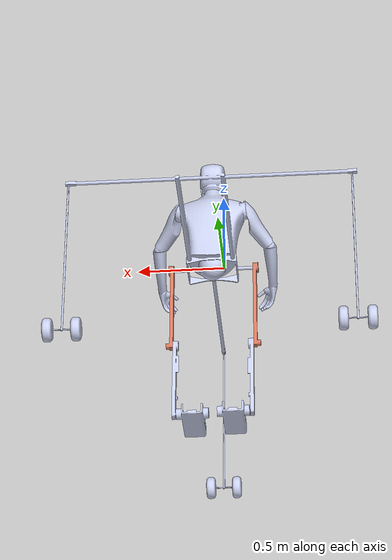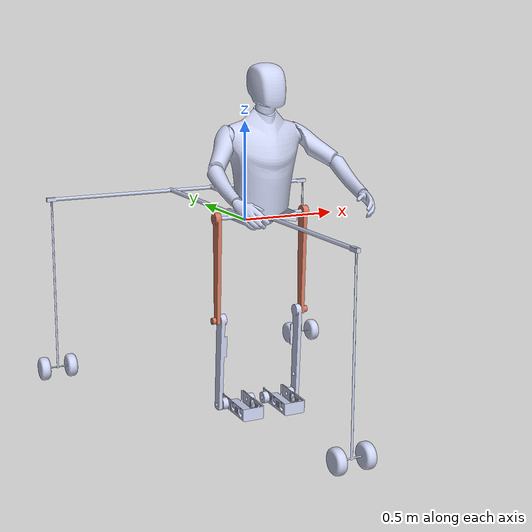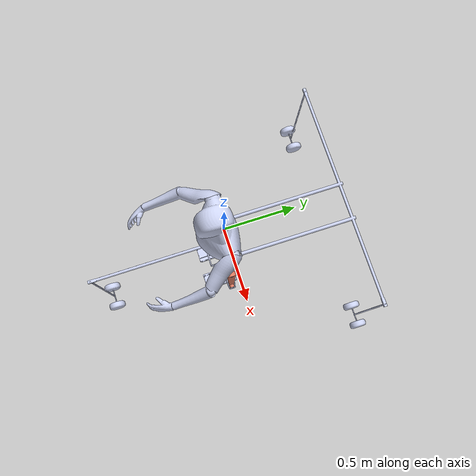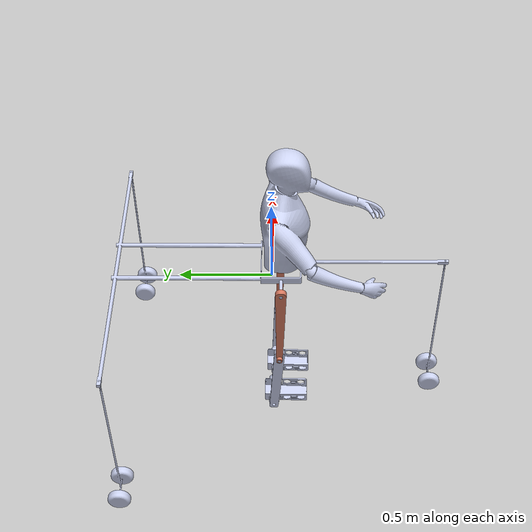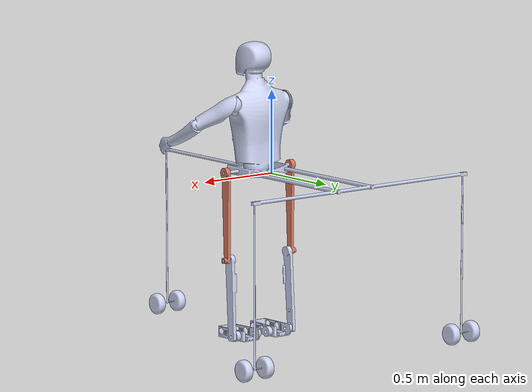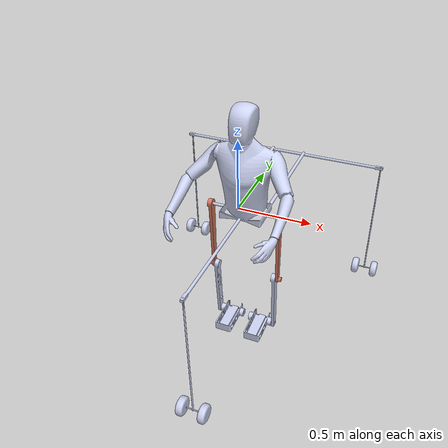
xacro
<?xml version="1.0"?>
<robot
  name="exo_vone" xmlns:xacro="http://ros.org/wiki/xacro">

#Added Visuals
  <xacro:macro name="body_color">
    <visual>
    <material>
        <ambient>255 204 203 1</ambient>
        <diffuse>255 204 203 1</diffuse>
        <specular>0.1 0.1 0.1 1</specular>
        <emissive>0 0 0 0</emissive>
    </material>
    </visual>
  </xacro:macro>

  <xacro:macro name="leg_color">
    <visual>
    <material>
        <ambient>255 152 0 1</ambient>
        <diffuse>255 152 0 1</diffuse>
        <specular>0.1 0.1 0.1 1</specular>
        <emissive>0 0 0 0</emissive>
    </material>
    </visual>
  </xacro:macro>

  <xacro:macro name="wheel_color">
    <visual>
    <material>
        <ambient>60 60 60 1</ambient>
        <diffuse>60 60 60 1</diffuse>
        <specular>0.1 0.1 0.1 1</specular>
        <emissive>0 0 0 0</emissive>
    </material>
    </visual>
  </xacro:macro>

  <xacro:macro name="shoe_color">
    <visual>
    <material>
        <ambient>135 206 235 1</ambient>
        <diffuse>135 206 235 1</diffuse>
        <specular>0.1 0.1 0.1 1</specular>
        <emissive>0 0 0 0</emissive>
    </material>
    </visual>
  </xacro:macro>

  # Add this before base link
  <link name="dummy_link"></link>
  <link
    name="body">
    <inertial>
      <origin
        xyz="0.0721703450880188 -0.0711850762110267 0.325437570168997"
        rpy="0 0 0" />
      <mass
        value="40.0322700838983" />
      <inertia
        ixx="1.12242433869777"
        ixy="0.0135694513781301"
        ixz="-8.52864632798917E-05"
        iyy="0.8604760758101"
        iyz="-0.0229895386625281"
        izz="0.86890767646624" />
    </inertial>
    <visual>
      <origin
        xyz="0 0 0"
        rpy="0 0 0" />
      <geometry>
        <mesh
          filename="package://exo_vone/meshes/body.STL" />
      </geometry>
      <material
        name="">
        <color
          rgba="0.792156862745098 0.819607843137255 0.933333333333333 1" />
      </material>
    </visual>
    <collision>
      <origin
        xyz="0 0 0"
        rpy="0 0 0" />
      <geometry>
        <mesh
          filename="package://exo_vone/meshes/body.STL" />
      </geometry>
    </collision>
  </link>
# Add this after base link
  <joint name="dummy_joint" type="fixed">
      <origin rpy="0 0 0" xyz="0 0 0" />
      <parent link="dummy_link"/>
      <child link="body"/>
  </joint>

  <link
    name="leftthigh">
    <inertial>
      <origin
        xyz="-0.00536778004792505 -0.227132301681399 0.0110924986446574"
        rpy="0 0 0" />
      <mass
        value="0.563007071942983" />
      <inertia
        ixx="0.0108814890246219"
        ixy="-0.000253684328401118"
        ixz="1.54879514035375E-06"
        iyy="0.000147965154666073"
        iyz="6.18911123078994E-05"
        izz="0.0109763459714468" />
    </inertial>
    <visual>
      <origin
        xyz="0 0 0"
        rpy="0 0 0" />
      <geometry>
        <mesh
          filename="package://exo_vone/meshes/leftthigh.STL" />
      </geometry>
      <material
        name="">
        <color
          rgba="0.83921568627451 0.470588235294118 0.368627450980392 1" />
      </material>
    </visual>
    <collision>
      <origin
        xyz="0 0 0"
        rpy="0 0 0" />
      <geometry>
        <mesh
          filename="package://exo_vone/meshes/leftthigh.STL" />
      </geometry>
    </collision>
  </link>
  <joint
    name="leftthighjoint"
    type="revolute">
    <origin
      xyz="0.29555 -0.049096 0.03"
      rpy="1.5708 -0.03881 1.5708" />
    <parent
      link="body" />
    <child
      link="leftthigh" />
    <axis
      xyz="0 0 -1" />
    <limit
      lower="-0.7"
      upper="0.7"
      effort="0"
      velocity="0" />
  </joint>
  <link
    name="leftknee">
    <inertial>
      <origin
        xyz="-0.2050564118263 -0.00956594644923981 -0.0103304354854488"
        rpy="0 0 0" />
      <mass
        value="0.6069234730997" />
      <inertia
        ixx="0.000220783749580585"
        ixy="-0.000606622090299375"
        ixz="9.7203980224204E-06"
        iyy="0.013711480308962"
        iyz="-1.98267817084477E-06"
        izz="0.0138505508080809" />
    </inertial>
    <visual>
      <origin
        xyz="0 0 0"
        rpy="0 0 0" />
      <geometry>
        <mesh
          filename="package://exo_vone/meshes/leftknee.STL" />
      </geometry>
      <material
        name="">
        <color
          rgba="0.792156862745098 0.819607843137255 0.933333333333333 1" />
      </material>
    </visual>
    <collision>
      <origin
        xyz="0 0 0"
        rpy="0 0 0" />
      <geometry>
        <mesh
          filename="package://exo_vone/meshes/leftknee.STL" />
      </geometry>
    </collision>
  </link>
  <joint
    name="leftkneejoint"
    type="revolute">
    <origin
      xyz="-0.012703 -0.5222 0"
      rpy="0 0 1.532" />
    <parent
      link="leftthigh" />
    <child
      link="leftknee" />
    <axis
      xyz="0 0 1" />
    <limit
      lower="-0.7"
      upper="0.7"
      effort="0"
      velocity="0" />
  </joint>
  <link
    name="leftshoe">
    <inertial>
      <origin
        xyz="-0.0126541929702663 0.0572351863043321 -0.0889168953577859"
        rpy="0 0 0" />
      <mass
        value="0.621318515868409" />
      <inertia
        ixx="0.00460577107937433"
        ixy="0.000181415694080681"
        ixz="-8.03394290424055E-07"
        iyy="0.00159077626935315"
        iyz="1.50811120899723E-05"
        izz="0.00340229565651185" />
    </inertial>
    <visual>
      <origin
        xyz="0 0 0"
        rpy="0 0 0" />
      <geometry>
        <mesh
          filename="package://exo_vone/meshes/leftshoe.STL" />
      </geometry>
      <material
        name="">
        <color
          rgba="0.792156862745098 0.819607843137255 0.933333333333333 1" />
      </material>
    </visual>
    <collision>
      <origin
        xyz="0 0 0"
        rpy="0 0 0" />
      <geometry>
        <mesh
          filename="package://exo_vone/meshes/leftshoe.STL" />
      </geometry>
    </collision>
  </link>
  <joint
    name="leftshoejoint"
    type="revolute">
    <origin
      xyz="-0.46002 -0.021094 -0.024609"
      rpy="0 0 0" />
    <parent
      link="leftknee" />
    <child
      link="leftshoe" />
    <axis
      xyz="0 0 1" />
    <limit
      lower="-0.7"
      upper="0.7"
      effort="0"
      velocity="0" />
  </joint>
  <link
    name="rightthigh">
    <inertial>
      <origin
        xyz="0.00323520741228955 0.227172685335919 0.0110924986446574"
        rpy="0 0 0" />
      <mass
        value="0.563007071942982" />
      <inertia
        ixx="0.010885306021714"
        ixy="-0.000152876877290307"
        ixz="-9.67688209881082E-07"
        iyy="0.000144148157573983"
        iyz="-6.19029250409402E-05"
        izz="0.0109763459714468" />
    </inertial>
    <visual>
      <origin
        xyz="0 0 0"
        rpy="0 0 0" />
      <geometry>
        <mesh
          filename="package://exo_vone/meshes/rightthigh.STL" />
      </geometry>
      <material
        name="">
        <color
          rgba="0.83921568627451 0.470588235294118 0.368627450980392 1" />
      </material>
    </visual>
    <collision>
      <origin
        xyz="0 0 0"
        rpy="0 0 0" />
      <geometry>
        <mesh
          filename="package://exo_vone/meshes/rightthigh.STL" />
      </geometry>
    </collision>
  </link>
  <joint
    name="rightthighjoint"
    type="revolute">
    <origin
      xyz="-0.16345 -0.049096 0.03"
      rpy="-1.5708 0 1.5708" />
    <parent
      link="body" />
    <child
      link="rightthigh" />
    <axis
      xyz="0 0 -1" />
    <limit
      lower="-0.7"
      upper="0.7"
      effort="0"
      velocity="0" />
  </joint>
  <link
    name="rightknee">
    <inertial>
      <origin
        xyz="-0.205160365094109 0.00699027587207472 -0.0103304354854488"
        rpy="0 0 0" />
      <mass
        value="0.6069234730997" />
      <inertia
        ixx="0.000210943270211191"
        ixy="0.000484910924019683"
        ixz="9.52900202741494E-06"
        iyy="0.0137213207883314"
        iyz="-2.75957801211138E-06"
        izz="0.0138505508080809" />
    </inertial>
    <visual>
      <origin
        xyz="0 0 0"
        rpy="0 0 0" />
      <geometry>
        <mesh
          filename="package://exo_vone/meshes/rightknee.STL" />
      </geometry>
      <material
        name="">
        <color
          rgba="0.792156862745098 0.819607843137255 0.933333333333333 1" />
      </material>
    </visual>
    <collision>
      <origin
        xyz="0 0 0"
        rpy="0 0 0" />
      <geometry>
        <mesh
          filename="package://exo_vone/meshes/rightknee.STL" />
      </geometry>
    </collision>
  </link>
  <joint
    name="rightkneejoint"
    type="revolute">
    <origin
      xyz="0.0077998 0.52229 0"
      rpy="0 0 -1.6064" />
    <parent
      link="rightthigh" />
    <child
      link="rightknee" />
    <axis
      xyz="0 0 1" />
    <limit
      lower="-0.7"
      upper="0.7"
      effort="0"
      velocity="0" />
  </joint>
  <link
    name="rightshoe">
    <inertial>
      <origin
        xyz="-0.00978116927535799 -0.0577955352057424 -0.0910831049034314"
        rpy="0 0 0" />
      <mass
        value="0.621318516161137" />
      <inertia
        ixx="0.00461634771833496"
        ixy="-3.01871483278428E-05"
        ixz="4.95280349416128E-08"
        iyy="0.00158019962449932"
        iyz="1.51024194916695E-05"
        izz="0.00340229565376732" />
    </inertial>
    <visual>
      <origin
        xyz="0 0 0"
        rpy="0 0 0" />
      <geometry>
        <mesh
          filename="package://exo_vone/meshes/rightshoe.STL" />
      </geometry>
      <material
        name="">
        <color
          rgba="0.792156862745098 0.819607843137255 0.933333333333333 1" />
      </material>
    </visual>
    <collision>
      <origin
        xyz="0 0 0"
        rpy="0 0 0" />
      <geometry>
        <mesh
          filename="package://exo_vone/meshes/rightshoe.STL" />
      </geometry>
    </collision>
  </link>
  <joint
    name="rightshoejoint"
    type="revolute">
    <origin
      xyz="-0.46023 0.016047 -0.025367"
      rpy="0 0 0" />
    <parent
      link="rightknee" />
    <child
      link="rightshoe" />
    <axis
      xyz="0 0 -1" />
    <limit
      lower="-0.7"
      upper="0.7"
      effort="0"
      velocity="0" />
  </joint>
  <link
    name="frontwheel">
    <inertial>
      <origin
        xyz="-0.000248159145543256 0.0355492834672292 -1.22418508663458E-09"
        rpy="0 0 0" />
      <mass
        value="1.26482191163624" />
      <inertia
        ixx="0.00788423820434775"
        ixy="3.85182284037093E-11"
        ixz="8.98039607625485E-11"
        iyy="0.00823409874040419"
        iyz="-5.8640240900738E-10"
        izz="0.0138855471441829" />
    </inertial>
    <visual>
      <origin
        xyz="0 0 0"
        rpy="0 0 0" />
      <geometry>
        <mesh
          filename="package://exo_vone/meshes/frontwheel.STL" />
      </geometry>
      <material
        name="">
        <color
          rgba="0.792156862745098 0.819607843137255 0.933333333333333 1" />
      </material>
    </visual>
    <collision>
      <origin
        xyz="0 0 0"
        rpy="0 0 0" />
      <geometry>
        <mesh
          filename="package://exo_vone/meshes/frontwheel.STL" />
      </geometry>
    </collision>
  </link>
  <joint
    name="frontwheeljoint"
    type="fixed">
    <origin
      xyz="0.071552 -0.94232 -0.92813"
      rpy="1.5708 0 0.00060906" />
    <parent
      link="body" />
    <child
      link="frontwheel" />
    <axis
      xyz="0 0 0" />
  </joint>
  <link
    name="leftwheel">
    <inertial>
      <origin
        xyz="0.101615564094677 0.0180615166863338 0.0213166592302764"
        rpy="0 0 0" />
      <mass
        value="1.26482191163624" />
      <inertia
        ixx="0.00788423820434795"
        ixy="-4.36165755186645E-11"
        ixz="8.74416237223078E-11"
        iyy="0.0115238223153073"
        iyz="-0.00278736826540503"
        izz="0.01059582356928" />
    </inertial>
    <visual>
      <origin
        xyz="0 0 0"
        rpy="0 0 0" />
      <geometry>
        <mesh
          filename="package://exo_vone/meshes/leftwheel.STL" />
      </geometry>
      <material
        name="">
        <color
          rgba="0.792156862745098 0.819607843137255 0.933333333333333 1" />
      </material>
    </visual>
    <collision>
      <origin
        xyz="0 0 0"
        rpy="0 0 0" />
      <geometry>
        <mesh
          filename="package://exo_vone/meshes/leftwheel.STL" />
      </geometry>
    </collision>
  </link>
  <joint
    name="leftwheeljoint"
    type="fixed">
    <origin
      xyz="0.89882 0.84046 -0.92188"
      rpy="0.70292 0 3.1416" />
    <parent
      link="body" />
    <child
      link="leftwheel" />
    <axis
      xyz="0 0 0" />
  </joint>
  <link
    name="rightwheel">
    <inertial>
      <origin
        xyz="0.101615564094677 0.0180615166863305 0.0213166592302794"
        rpy="0 0 0" />
      <mass
        value="1.26482191163623" />
      <inertia
        ixx="0.00788423820434783"
        ixy="-4.36163887507567E-11"
        ixz="8.744146301709E-11"
        iyy="0.0115238223153072"
        iyz="-0.00278736826540497"
        izz="0.0105958235692799" />
    </inertial>
    <visual>
      <origin
        xyz="0 0 0"
        rpy="0 0 0" />
      <geometry>
        <mesh
          filename="package://exo_vone/meshes/rightwheel.STL" />
      </geometry>
      <material
        name="">
        <color
          rgba="0.792156862745098 0.819607843137255 0.933333333333333 1" />
      </material>
    </visual>
    <collision>
      <origin
        xyz="0 0 0"
        rpy="0 0 0" />
      <geometry>
        <mesh
          filename="package://exo_vone/meshes/rightwheel.STL" />
      </geometry>
    </collision>
  </link>
  <joint
    name="rightwheeljoint"
    type="fixed">
    <origin
      xyz="-0.85925 0.84046 -0.92188"
      rpy="0.70292 0 0" />
    <parent
      link="body" />
    <child
      link="rightwheel" />
    <axis
      xyz="0 0 0" />
  </joint>

    <!-- Adding Controllers -->
  <ros2_control name="GazeboSystem" type="system">
  <hardware>
      <plugin>gazebo_ros2_control/GazeboSystem</plugin>
  </hardware>
  # Velocity Controllers

  <joint name="leftthighjoint">
      <command_interface name="velocity">
          <param name="min">-1000.0</param>
          <param name="max">1000.0</param>
      </command_interface>
      <state_interface name="position"/>
      <state_interface name="velocity"/>
  </joint>

  <joint name="leftkneejoint">
      <command_interface name="velocity">
          <param name="min">-1000.0</param>
          <param name="max">1000.0</param>
      </command_interface>
      <state_interface name="position"/>
      <state_interface name="velocity"/>
  </joint>

  <joint name="leftshoejoint">
      <command_interface name="velocity">
          <param name="min">-1000.0</param>
          <param name="max">1000.0</param>
      </command_interface>
      <state_interface name="position"/>
      <state_interface name="velocity"/>
  </joint>

  <joint name="rightthighjoint">
      <command_interface name="velocity">
          <param name="min">-1000.0</param>
          <param name="max">1000.0</param>
      </command_interface>
      <state_interface name="position"/>
      <state_interface name="velocity"/>
  </joint>

  <joint name="rightkneejoint">
      <command_interface name="velocity">
          <param name="min">-1000.0</param>
          <param name="max">1000.0</param>
      </command_interface>
      <state_interface name="position"/>
      <state_interface name="velocity"/>
  </joint>

  <joint name="rightshoejoint">
      <command_interface name="velocity">
          <param name="min">-1000.0</param>
          <param name="max">1000.0</param>
      </command_interface>
      <state_interface name="position"/>
      <state_interface name="velocity"/>
  </joint>

  # Position Controller
  <joint name="leftthighjoint">
      <command_interface name="position">
          <param name="min">-3.14</param>
          <param name="max">3.14</param>
      </command_interface>
      <state_interface name="position"/>
      <state_interface name="velocity"/>
  </joint>

  <joint name="leftkneejoint">
      <command_interface name="position">
          <param name="min">-3.14</param>
          <param name="max">3.14</param>
      </command_interface>
      <state_interface name="position"/>
      <state_interface name="velocity"/>
  </joint>

  <joint name="leftshoejoint">
      <command_interface name="position">
          <param name="min">-3.14</param>
          <param name="max">3.14</param>
      </command_interface>
      <state_interface name="position"/>
      <state_interface name="velocity"/>
  </joint>

  <joint name="rightthighjoint">
      <command_interface name="position">
          <param name="min">-3.14</param>
          <param name="max">3.14</param>
      </command_interface>
      <state_interface name="position"/>
      <state_interface name="velocity"/>
  </joint>

  <joint name="rightkneejoint">
      <command_interface name="position">
          <param name="min">-3.14</param>
          <param name="max">3.14</param>
      </command_interface>
      <state_interface name="position"/>
      <state_interface name="velocity"/>
  </joint>

  <joint name="rightshoejoint">
      <command_interface name="position">
          <param name="min">-3.14</param>
          <param name="max">3.14</param>
      </command_interface>
      <state_interface name="position"/>
      <state_interface name="velocity"/>
  </joint>

  </ros2_control>

<!-- Gazebo Plugin -->
  <gazebo>
      <plugin filename="libgazebo_ros2_control.so" name="gazebo_ros2_control">
          <parameters>$(find exo_vone)/config/control.yaml</parameters>
      </plugin>
  </gazebo>

  <gazebo reference="body">
    <xacro:body_color />
  </gazebo>
  <gazebo reference="leftthigh">
    <xacro:leg_color />
  </gazebo>
  <gazebo reference="leftknee">
    <xacro:leg_color />
  </gazebo>
  <gazebo reference="leftshoe">
    <xacro:shoe_color />
  </gazebo>
  <gazebo reference="rightthigh">
    <xacro:leg_color />
  </gazebo>
  <gazebo reference="rightknee">
    <xacro:leg_color />
  </gazebo>
  <gazebo reference="rightshoe">
    <xacro:shoe_color />
  </gazebo>
  <gazebo reference="frontwheel">
    <xacro:wheel_color />
  </gazebo>
  <gazebo reference="rightwheel">
    <xacro:wheel_color />
  </gazebo>
  <gazebo reference="leftwheel">
    <xacro:wheel_color />
  </gazebo>

</robot>
